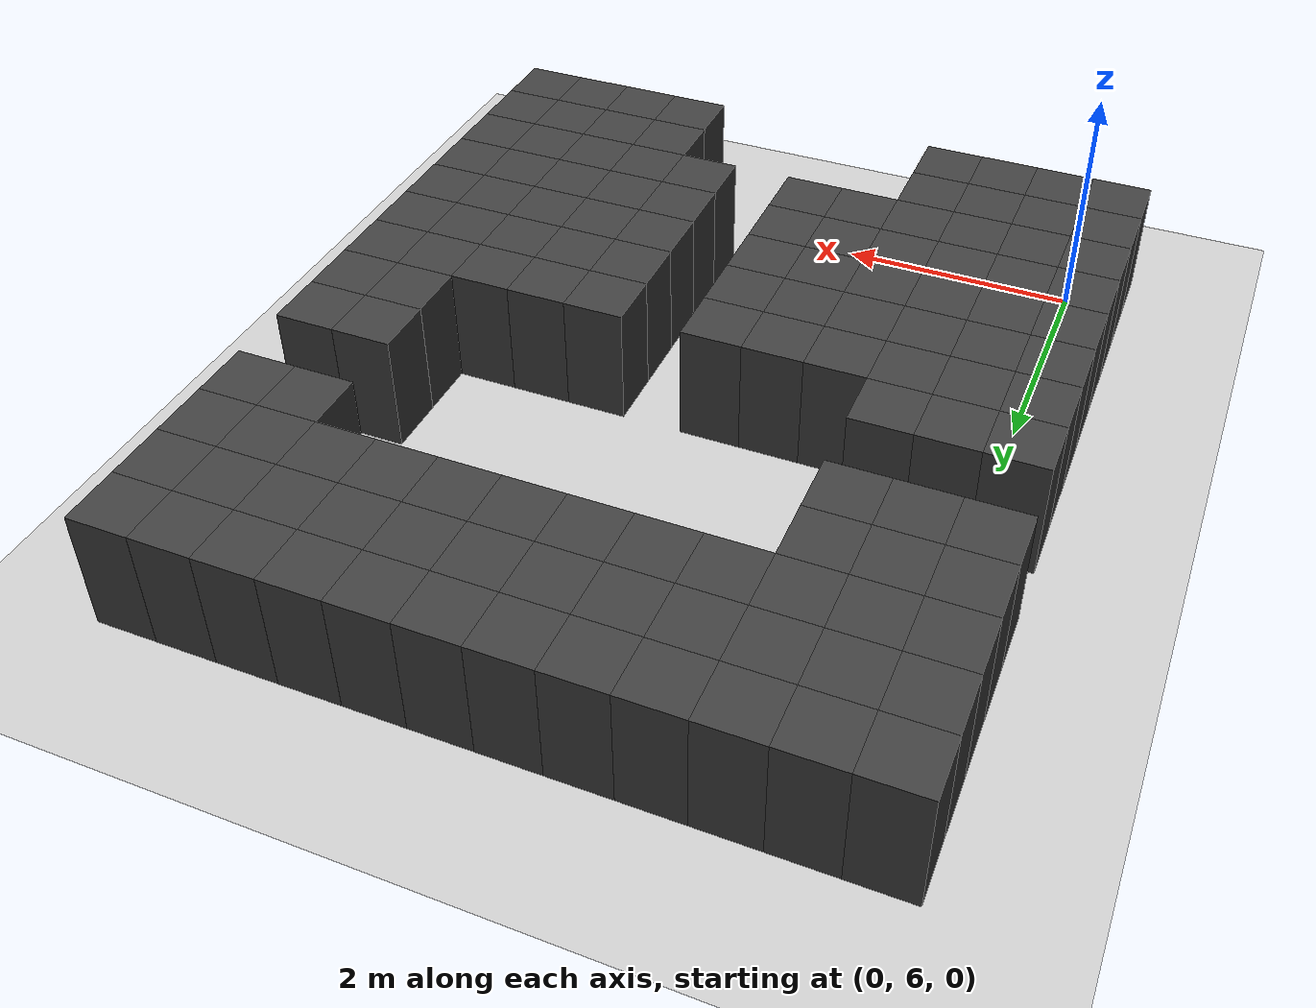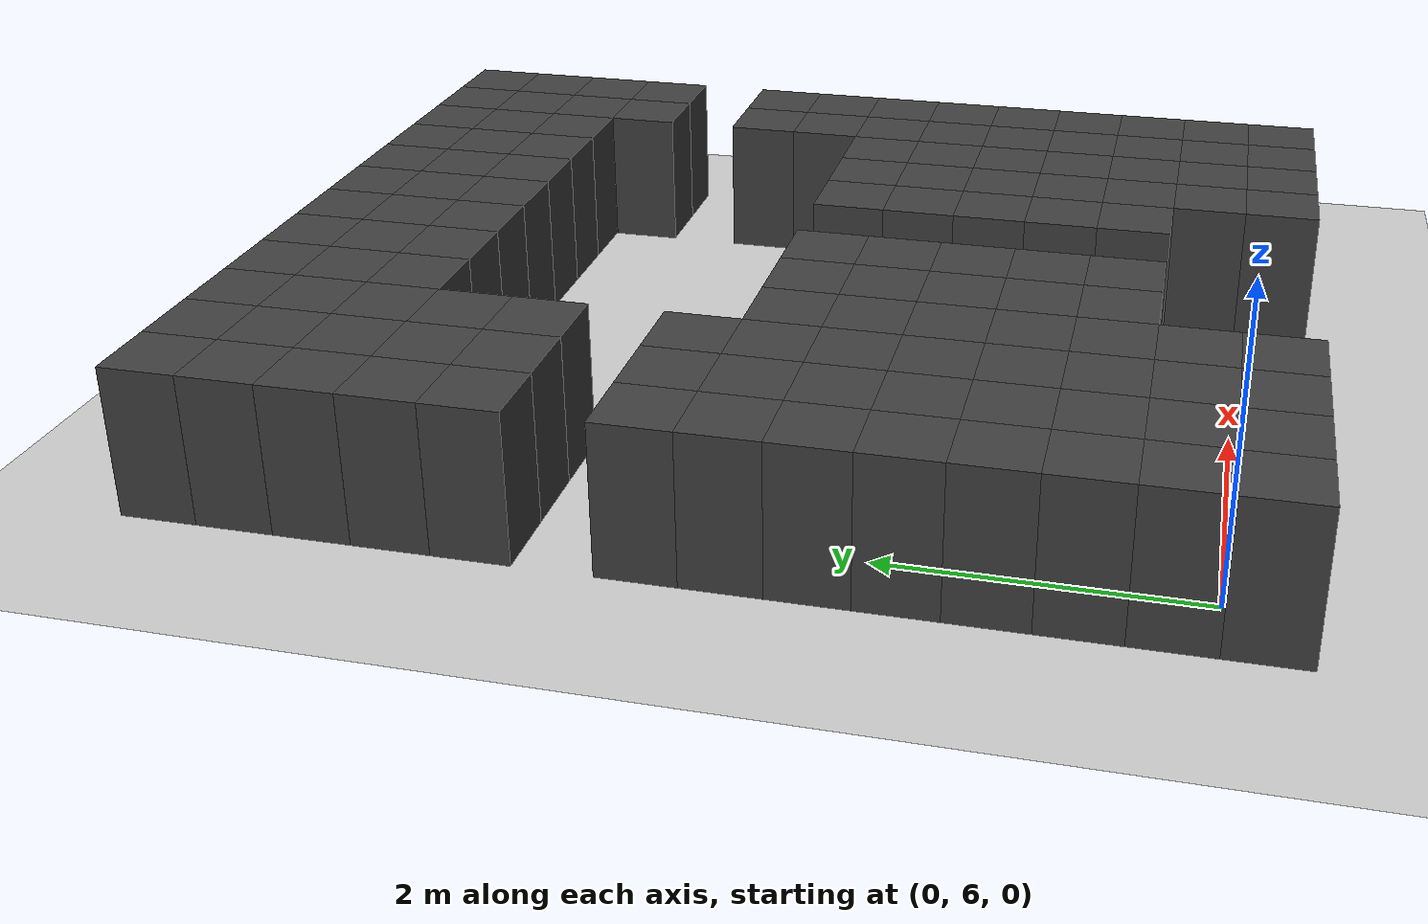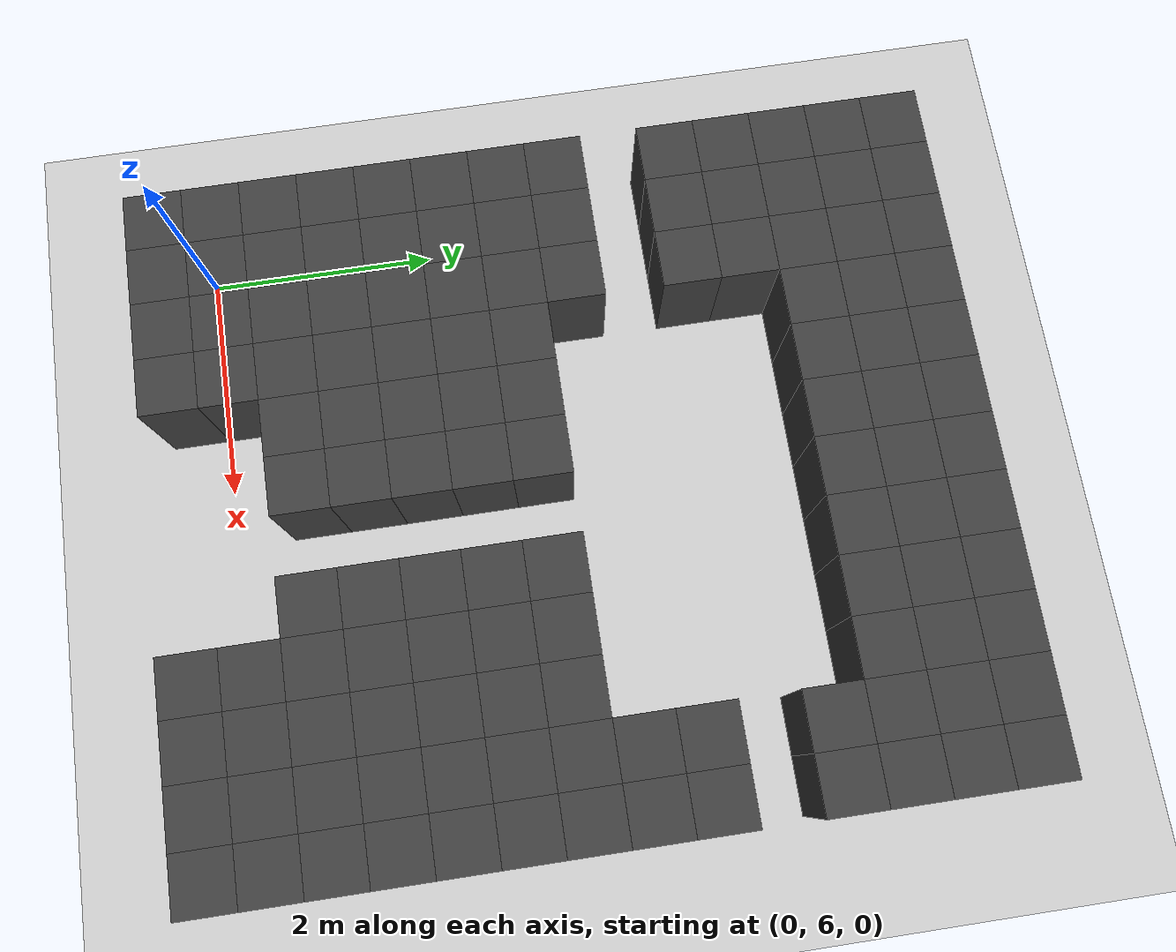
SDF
<sdf version="1.7">
 <world name="map_14706">
  <model name="ground_plane">
   <static>true</static>
   <link name="link">
    <collision name="collision">
     <geometry><plane><normal>0 0 1</normal><size>200 200</size></plane></geometry>
    </collision>
    <visual name="visual">
     <geometry><plane><normal>0 0 1</normal><size>200 200</size></plane></geometry>
     <material><ambient>0.8 0.8 0.8 1</ambient><diffuse>0.8 0.8 0.8 1</diffuse></material>
    </visual>
   </link>
  </model>
  <model name="maze_environment">
   <static>true</static>
   <link name="wall_24">
    <pose>-0.250 12.250 0.500 0 0 0</pose>
    <collision name="col"><geometry><box><size>0.5 0.5 1.0</size></box></geometry></collision>
    <visual name="vis">
     <geometry><box><size>0.5 0.5 1.0</size></box></geometry>
     <material><ambient>0.15 0.15 0.15 1</ambient><diffuse>0.25 0.25 0.25 1</diffuse></material>
    </visual>
   </link>
   <link name="wall_25">
    <pose>0.250 12.250 0.500 0 0 0</pose>
    <collision name="col"><geometry><box><size>0.5 0.5 1.0</size></box></geometry></collision>
    <visual name="vis">
     <geometry><box><size>0.5 0.5 1.0</size></box></geometry>
     <material><ambient>0.15 0.15 0.15 1</ambient><diffuse>0.25 0.25 0.25 1</diffuse></material>
    </visual>
   </link>
   <link name="wall_26">
    <pose>0.750 12.250 0.500 0 0 0</pose>
    <collision name="col"><geometry><box><size>0.5 0.5 1.0</size></box></geometry></collision>
    <visual name="vis">
     <geometry><box><size>0.5 0.5 1.0</size></box></geometry>
     <material><ambient>0.15 0.15 0.15 1</ambient><diffuse>0.25 0.25 0.25 1</diffuse></material>
    </visual>
   </link>
   <link name="wall_27">
    <pose>1.250 12.250 0.500 0 0 0</pose>
    <collision name="col"><geometry><box><size>0.5 0.5 1.0</size></box></geometry></collision>
    <visual name="vis">
     <geometry><box><size>0.5 0.5 1.0</size></box></geometry>
     <material><ambient>0.15 0.15 0.15 1</ambient><diffuse>0.25 0.25 0.25 1</diffuse></material>
    </visual>
   </link>
   <link name="wall_28">
    <pose>1.750 12.250 0.500 0 0 0</pose>
    <collision name="col"><geometry><box><size>0.5 0.5 1.0</size></box></geometry></collision>
    <visual name="vis">
     <geometry><box><size>0.5 0.5 1.0</size></box></geometry>
     <material><ambient>0.15 0.15 0.15 1</ambient><diffuse>0.25 0.25 0.25 1</diffuse></material>
    </visual>
   </link>
   <link name="wall_29">
    <pose>2.250 12.250 0.500 0 0 0</pose>
    <collision name="col"><geometry><box><size>0.5 0.5 1.0</size></box></geometry></collision>
    <visual name="vis">
     <geometry><box><size>0.5 0.5 1.0</size></box></geometry>
     <material><ambient>0.15 0.15 0.15 1</ambient><diffuse>0.25 0.25 0.25 1</diffuse></material>
    </visual>
   </link>
   <link name="wall_30">
    <pose>2.750 12.250 0.500 0 0 0</pose>
    <collision name="col"><geometry><box><size>0.5 0.5 1.0</size></box></geometry></collision>
    <visual name="vis">
     <geometry><box><size>0.5 0.5 1.0</size></box></geometry>
     <material><ambient>0.15 0.15 0.15 1</ambient><diffuse>0.25 0.25 0.25 1</diffuse></material>
    </visual>
   </link>
   <link name="wall_31">
    <pose>3.250 12.250 0.500 0 0 0</pose>
    <collision name="col"><geometry><box><size>0.5 0.5 1.0</size></box></geometry></collision>
    <visual name="vis">
     <geometry><box><size>0.5 0.5 1.0</size></box></geometry>
     <material><ambient>0.15 0.15 0.15 1</ambient><diffuse>0.25 0.25 0.25 1</diffuse></material>
    </visual>
   </link>
   <link name="wall_32">
    <pose>3.750 12.250 0.500 0 0 0</pose>
    <collision name="col"><geometry><box><size>0.5 0.5 1.0</size></box></geometry></collision>
    <visual name="vis">
     <geometry><box><size>0.5 0.5 1.0</size></box></geometry>
     <material><ambient>0.15 0.15 0.15 1</ambient><diffuse>0.25 0.25 0.25 1</diffuse></material>
    </visual>
   </link>
   <link name="wall_33">
    <pose>4.250 12.250 0.500 0 0 0</pose>
    <collision name="col"><geometry><box><size>0.5 0.5 1.0</size></box></geometry></collision>
    <visual name="vis">
     <geometry><box><size>0.5 0.5 1.0</size></box></geometry>
     <material><ambient>0.15 0.15 0.15 1</ambient><diffuse>0.25 0.25 0.25 1</diffuse></material>
    </visual>
   </link>
   <link name="wall_34">
    <pose>4.750 12.250 0.500 0 0 0</pose>
    <collision name="col"><geometry><box><size>0.5 0.5 1.0</size></box></geometry></collision>
    <visual name="vis">
     <geometry><box><size>0.5 0.5 1.0</size></box></geometry>
     <material><ambient>0.15 0.15 0.15 1</ambient><diffuse>0.25 0.25 0.25 1</diffuse></material>
    </visual>
   </link>
   <link name="wall_35">
    <pose>5.250 12.250 0.500 0 0 0</pose>
    <collision name="col"><geometry><box><size>0.5 0.5 1.0</size></box></geometry></collision>
    <visual name="vis">
     <geometry><box><size>0.5 0.5 1.0</size></box></geometry>
     <material><ambient>0.15 0.15 0.15 1</ambient><diffuse>0.25 0.25 0.25 1</diffuse></material>
    </visual>
   </link>
   <link name="wall_71">
    <pose>-0.250 11.750 0.500 0 0 0</pose>
    <collision name="col"><geometry><box><size>0.5 0.5 1.0</size></box></geometry></collision>
    <visual name="vis">
     <geometry><box><size>0.5 0.5 1.0</size></box></geometry>
     <material><ambient>0.15 0.15 0.15 1</ambient><diffuse>0.25 0.25 0.25 1</diffuse></material>
    </visual>
   </link>
   <link name="wall_72">
    <pose>0.250 11.750 0.500 0 0 0</pose>
    <collision name="col"><geometry><box><size>0.5 0.5 1.0</size></box></geometry></collision>
    <visual name="vis">
     <geometry><box><size>0.5 0.5 1.0</size></box></geometry>
     <material><ambient>0.15 0.15 0.15 1</ambient><diffuse>0.25 0.25 0.25 1</diffuse></material>
    </visual>
   </link>
   <link name="wall_73">
    <pose>0.750 11.750 0.500 0 0 0</pose>
    <collision name="col"><geometry><box><size>0.5 0.5 1.0</size></box></geometry></collision>
    <visual name="vis">
     <geometry><box><size>0.5 0.5 1.0</size></box></geometry>
     <material><ambient>0.15 0.15 0.15 1</ambient><diffuse>0.25 0.25 0.25 1</diffuse></material>
    </visual>
   </link>
   <link name="wall_74">
    <pose>1.250 11.750 0.500 0 0 0</pose>
    <collision name="col"><geometry><box><size>0.5 0.5 1.0</size></box></geometry></collision>
    <visual name="vis">
     <geometry><box><size>0.5 0.5 1.0</size></box></geometry>
     <material><ambient>0.15 0.15 0.15 1</ambient><diffuse>0.25 0.25 0.25 1</diffuse></material>
    </visual>
   </link>
   <link name="wall_75">
    <pose>1.750 11.750 0.500 0 0 0</pose>
    <collision name="col"><geometry><box><size>0.5 0.5 1.0</size></box></geometry></collision>
    <visual name="vis">
     <geometry><box><size>0.5 0.5 1.0</size></box></geometry>
     <material><ambient>0.15 0.15 0.15 1</ambient><diffuse>0.25 0.25 0.25 1</diffuse></material>
    </visual>
   </link>
   <link name="wall_76">
    <pose>2.250 11.750 0.500 0 0 0</pose>
    <collision name="col"><geometry><box><size>0.5 0.5 1.0</size></box></geometry></collision>
    <visual name="vis">
     <geometry><box><size>0.5 0.5 1.0</size></box></geometry>
     <material><ambient>0.15 0.15 0.15 1</ambient><diffuse>0.25 0.25 0.25 1</diffuse></material>
    </visual>
   </link>
   <link name="wall_77">
    <pose>2.750 11.750 0.500 0 0 0</pose>
    <collision name="col"><geometry><box><size>0.5 0.5 1.0</size></box></geometry></collision>
    <visual name="vis">
     <geometry><box><size>0.5 0.5 1.0</size></box></geometry>
     <material><ambient>0.15 0.15 0.15 1</ambient><diffuse>0.25 0.25 0.25 1</diffuse></material>
    </visual>
   </link>
   <link name="wall_78">
    <pose>3.250 11.750 0.500 0 0 0</pose>
    <collision name="col"><geometry><box><size>0.5 0.5 1.0</size></box></geometry></collision>
    <visual name="vis">
     <geometry><box><size>0.5 0.5 1.0</size></box></geometry>
     <material><ambient>0.15 0.15 0.15 1</ambient><diffuse>0.25 0.25 0.25 1</diffuse></material>
    </visual>
   </link>
   <link name="wall_79">
    <pose>3.750 11.750 0.500 0 0 0</pose>
    <collision name="col"><geometry><box><size>0.5 0.5 1.0</size></box></geometry></collision>
    <visual name="vis">
     <geometry><box><size>0.5 0.5 1.0</size></box></geometry>
     <material><ambient>0.15 0.15 0.15 1</ambient><diffuse>0.25 0.25 0.25 1</diffuse></material>
    </visual>
   </link>
   <link name="wall_80">
    <pose>4.250 11.750 0.500 0 0 0</pose>
    <collision name="col"><geometry><box><size>0.5 0.5 1.0</size></box></geometry></collision>
    <visual name="vis">
     <geometry><box><size>0.5 0.5 1.0</size></box></geometry>
     <material><ambient>0.15 0.15 0.15 1</ambient><diffuse>0.25 0.25 0.25 1</diffuse></material>
    </visual>
   </link>
   <link name="wall_81">
    <pose>4.750 11.750 0.500 0 0 0</pose>
    <collision name="col"><geometry><box><size>0.5 0.5 1.0</size></box></geometry></collision>
    <visual name="vis">
     <geometry><box><size>0.5 0.5 1.0</size></box></geometry>
     <material><ambient>0.15 0.15 0.15 1</ambient><diffuse>0.25 0.25 0.25 1</diffuse></material>
    </visual>
   </link>
   <link name="wall_82">
    <pose>5.250 11.750 0.500 0 0 0</pose>
    <collision name="col"><geometry><box><size>0.5 0.5 1.0</size></box></geometry></collision>
    <visual name="vis">
     <geometry><box><size>0.5 0.5 1.0</size></box></geometry>
     <material><ambient>0.15 0.15 0.15 1</ambient><diffuse>0.25 0.25 0.25 1</diffuse></material>
    </visual>
   </link>
   <link name="wall_110">
    <pose>-0.250 11.250 0.500 0 0 0</pose>
    <collision name="col"><geometry><box><size>0.5 0.5 1.0</size></box></geometry></collision>
    <visual name="vis">
     <geometry><box><size>0.5 0.5 1.0</size></box></geometry>
     <material><ambient>0.15 0.15 0.15 1</ambient><diffuse>0.25 0.25 0.25 1</diffuse></material>
    </visual>
   </link>
   <link name="wall_111">
    <pose>0.250 11.250 0.500 0 0 0</pose>
    <collision name="col"><geometry><box><size>0.5 0.5 1.0</size></box></geometry></collision>
    <visual name="vis">
     <geometry><box><size>0.5 0.5 1.0</size></box></geometry>
     <material><ambient>0.15 0.15 0.15 1</ambient><diffuse>0.25 0.25 0.25 1</diffuse></material>
    </visual>
   </link>
   <link name="wall_112">
    <pose>0.750 11.250 0.500 0 0 0</pose>
    <collision name="col"><geometry><box><size>0.5 0.5 1.0</size></box></geometry></collision>
    <visual name="vis">
     <geometry><box><size>0.5 0.5 1.0</size></box></geometry>
     <material><ambient>0.15 0.15 0.15 1</ambient><diffuse>0.25 0.25 0.25 1</diffuse></material>
    </visual>
   </link>
   <link name="wall_113">
    <pose>1.250 11.250 0.500 0 0 0</pose>
    <collision name="col"><geometry><box><size>0.5 0.5 1.0</size></box></geometry></collision>
    <visual name="vis">
     <geometry><box><size>0.5 0.5 1.0</size></box></geometry>
     <material><ambient>0.15 0.15 0.15 1</ambient><diffuse>0.25 0.25 0.25 1</diffuse></material>
    </visual>
   </link>
   <link name="wall_114">
    <pose>1.750 11.250 0.500 0 0 0</pose>
    <collision name="col"><geometry><box><size>0.5 0.5 1.0</size></box></geometry></collision>
    <visual name="vis">
     <geometry><box><size>0.5 0.5 1.0</size></box></geometry>
     <material><ambient>0.15 0.15 0.15 1</ambient><diffuse>0.25 0.25 0.25 1</diffuse></material>
    </visual>
   </link>
   <link name="wall_115">
    <pose>2.250 11.250 0.500 0 0 0</pose>
    <collision name="col"><geometry><box><size>0.5 0.5 1.0</size></box></geometry></collision>
    <visual name="vis">
     <geometry><box><size>0.5 0.5 1.0</size></box></geometry>
     <material><ambient>0.15 0.15 0.15 1</ambient><diffuse>0.25 0.25 0.25 1</diffuse></material>
    </visual>
   </link>
   <link name="wall_116">
    <pose>2.750 11.250 0.500 0 0 0</pose>
    <collision name="col"><geometry><box><size>0.5 0.5 1.0</size></box></geometry></collision>
    <visual name="vis">
     <geometry><box><size>0.5 0.5 1.0</size></box></geometry>
     <material><ambient>0.15 0.15 0.15 1</ambient><diffuse>0.25 0.25 0.25 1</diffuse></material>
    </visual>
   </link>
   <link name="wall_117">
    <pose>3.250 11.250 0.500 0 0 0</pose>
    <collision name="col"><geometry><box><size>0.5 0.5 1.0</size></box></geometry></collision>
    <visual name="vis">
     <geometry><box><size>0.5 0.5 1.0</size></box></geometry>
     <material><ambient>0.15 0.15 0.15 1</ambient><diffuse>0.25 0.25 0.25 1</diffuse></material>
    </visual>
   </link>
   <link name="wall_118">
    <pose>3.750 11.250 0.500 0 0 0</pose>
    <collision name="col"><geometry><box><size>0.5 0.5 1.0</size></box></geometry></collision>
    <visual name="vis">
     <geometry><box><size>0.5 0.5 1.0</size></box></geometry>
     <material><ambient>0.15 0.15 0.15 1</ambient><diffuse>0.25 0.25 0.25 1</diffuse></material>
    </visual>
   </link>
   <link name="wall_119">
    <pose>4.250 11.250 0.500 0 0 0</pose>
    <collision name="col"><geometry><box><size>0.5 0.5 1.0</size></box></geometry></collision>
    <visual name="vis">
     <geometry><box><size>0.5 0.5 1.0</size></box></geometry>
     <material><ambient>0.15 0.15 0.15 1</ambient><diffuse>0.25 0.25 0.25 1</diffuse></material>
    </visual>
   </link>
   <link name="wall_120">
    <pose>4.750 11.250 0.500 0 0 0</pose>
    <collision name="col"><geometry><box><size>0.5 0.5 1.0</size></box></geometry></collision>
    <visual name="vis">
     <geometry><box><size>0.5 0.5 1.0</size></box></geometry>
     <material><ambient>0.15 0.15 0.15 1</ambient><diffuse>0.25 0.25 0.25 1</diffuse></material>
    </visual>
   </link>
   <link name="wall_121">
    <pose>5.250 11.250 0.500 0 0 0</pose>
    <collision name="col"><geometry><box><size>0.5 0.5 1.0</size></box></geometry></collision>
    <visual name="vis">
     <geometry><box><size>0.5 0.5 1.0</size></box></geometry>
     <material><ambient>0.15 0.15 0.15 1</ambient><diffuse>0.25 0.25 0.25 1</diffuse></material>
    </visual>
   </link>
   <link name="wall_149">
    <pose>-0.250 10.750 0.500 0 0 0</pose>
    <collision name="col"><geometry><box><size>0.5 0.5 1.0</size></box></geometry></collision>
    <visual name="vis">
     <geometry><box><size>0.5 0.5 1.0</size></box></geometry>
     <material><ambient>0.15 0.15 0.15 1</ambient><diffuse>0.25 0.25 0.25 1</diffuse></material>
    </visual>
   </link>
   <link name="wall_150">
    <pose>0.250 10.750 0.500 0 0 0</pose>
    <collision name="col"><geometry><box><size>0.5 0.5 1.0</size></box></geometry></collision>
    <visual name="vis">
     <geometry><box><size>0.5 0.5 1.0</size></box></geometry>
     <material><ambient>0.15 0.15 0.15 1</ambient><diffuse>0.25 0.25 0.25 1</diffuse></material>
    </visual>
   </link>
   <link name="wall_151">
    <pose>0.750 10.750 0.500 0 0 0</pose>
    <collision name="col"><geometry><box><size>0.5 0.5 1.0</size></box></geometry></collision>
    <visual name="vis">
     <geometry><box><size>0.5 0.5 1.0</size></box></geometry>
     <material><ambient>0.15 0.15 0.15 1</ambient><diffuse>0.25 0.25 0.25 1</diffuse></material>
    </visual>
   </link>
   <link name="wall_152">
    <pose>4.750 10.750 0.500 0 0 0</pose>
    <collision name="col"><geometry><box><size>0.5 0.5 1.0</size></box></geometry></collision>
    <visual name="vis">
     <geometry><box><size>0.5 0.5 1.0</size></box></geometry>
     <material><ambient>0.15 0.15 0.15 1</ambient><diffuse>0.25 0.25 0.25 1</diffuse></material>
    </visual>
   </link>
   <link name="wall_153">
    <pose>5.250 10.750 0.500 0 0 0</pose>
    <collision name="col"><geometry><box><size>0.5 0.5 1.0</size></box></geometry></collision>
    <visual name="vis">
     <geometry><box><size>0.5 0.5 1.0</size></box></geometry>
     <material><ambient>0.15 0.15 0.15 1</ambient><diffuse>0.25 0.25 0.25 1</diffuse></material>
    </visual>
   </link>
   <link name="wall_180">
    <pose>-0.250 10.250 0.500 0 0 0</pose>
    <collision name="col"><geometry><box><size>0.5 0.5 1.0</size></box></geometry></collision>
    <visual name="vis">
     <geometry><box><size>0.5 0.5 1.0</size></box></geometry>
     <material><ambient>0.15 0.15 0.15 1</ambient><diffuse>0.25 0.25 0.25 1</diffuse></material>
    </visual>
   </link>
   <link name="wall_181">
    <pose>0.250 10.250 0.500 0 0 0</pose>
    <collision name="col"><geometry><box><size>0.5 0.5 1.0</size></box></geometry></collision>
    <visual name="vis">
     <geometry><box><size>0.5 0.5 1.0</size></box></geometry>
     <material><ambient>0.15 0.15 0.15 1</ambient><diffuse>0.25 0.25 0.25 1</diffuse></material>
    </visual>
   </link>
   <link name="wall_182">
    <pose>0.750 10.250 0.500 0 0 0</pose>
    <collision name="col"><geometry><box><size>0.5 0.5 1.0</size></box></geometry></collision>
    <visual name="vis">
     <geometry><box><size>0.5 0.5 1.0</size></box></geometry>
     <material><ambient>0.15 0.15 0.15 1</ambient><diffuse>0.25 0.25 0.25 1</diffuse></material>
    </visual>
   </link>
   <link name="wall_205">
    <pose>4.750 9.750 0.500 0 0 0</pose>
    <collision name="col"><geometry><box><size>0.5 0.5 1.0</size></box></geometry></collision>
    <visual name="vis">
     <geometry><box><size>0.5 0.5 1.0</size></box></geometry>
     <material><ambient>0.15 0.15 0.15 1</ambient><diffuse>0.25 0.25 0.25 1</diffuse></material>
    </visual>
   </link>
   <link name="wall_206">
    <pose>5.250 9.750 0.500 0 0 0</pose>
    <collision name="col"><geometry><box><size>0.5 0.5 1.0</size></box></geometry></collision>
    <visual name="vis">
     <geometry><box><size>0.5 0.5 1.0</size></box></geometry>
     <material><ambient>0.15 0.15 0.15 1</ambient><diffuse>0.25 0.25 0.25 1</diffuse></material>
    </visual>
   </link>
   <link name="wall_228">
    <pose>-0.250 9.250 0.500 0 0 0</pose>
    <collision name="col"><geometry><box><size>0.5 0.5 1.0</size></box></geometry></collision>
    <visual name="vis">
     <geometry><box><size>0.5 0.5 1.0</size></box></geometry>
     <material><ambient>0.15 0.15 0.15 1</ambient><diffuse>0.25 0.25 0.25 1</diffuse></material>
    </visual>
   </link>
   <link name="wall_229">
    <pose>0.250 9.250 0.500 0 0 0</pose>
    <collision name="col"><geometry><box><size>0.5 0.5 1.0</size></box></geometry></collision>
    <visual name="vis">
     <geometry><box><size>0.5 0.5 1.0</size></box></geometry>
     <material><ambient>0.15 0.15 0.15 1</ambient><diffuse>0.25 0.25 0.25 1</diffuse></material>
    </visual>
   </link>
   <link name="wall_230">
    <pose>0.750 9.250 0.500 0 0 0</pose>
    <collision name="col"><geometry><box><size>0.5 0.5 1.0</size></box></geometry></collision>
    <visual name="vis">
     <geometry><box><size>0.5 0.5 1.0</size></box></geometry>
     <material><ambient>0.15 0.15 0.15 1</ambient><diffuse>0.25 0.25 0.25 1</diffuse></material>
    </visual>
   </link>
   <link name="wall_231">
    <pose>4.750 9.250 0.500 0 0 0</pose>
    <collision name="col"><geometry><box><size>0.5 0.5 1.0</size></box></geometry></collision>
    <visual name="vis">
     <geometry><box><size>0.5 0.5 1.0</size></box></geometry>
     <material><ambient>0.15 0.15 0.15 1</ambient><diffuse>0.25 0.25 0.25 1</diffuse></material>
    </visual>
   </link>
   <link name="wall_232">
    <pose>5.250 9.250 0.500 0 0 0</pose>
    <collision name="col"><geometry><box><size>0.5 0.5 1.0</size></box></geometry></collision>
    <visual name="vis">
     <geometry><box><size>0.5 0.5 1.0</size></box></geometry>
     <material><ambient>0.15 0.15 0.15 1</ambient><diffuse>0.25 0.25 0.25 1</diffuse></material>
    </visual>
   </link>
   <link name="wall_250">
    <pose>-0.250 8.750 0.500 0 0 0</pose>
    <collision name="col"><geometry><box><size>0.5 0.5 1.0</size></box></geometry></collision>
    <visual name="vis">
     <geometry><box><size>0.5 0.5 1.0</size></box></geometry>
     <material><ambient>0.15 0.15 0.15 1</ambient><diffuse>0.25 0.25 0.25 1</diffuse></material>
    </visual>
   </link>
   <link name="wall_251">
    <pose>0.250 8.750 0.500 0 0 0</pose>
    <collision name="col"><geometry><box><size>0.5 0.5 1.0</size></box></geometry></collision>
    <visual name="vis">
     <geometry><box><size>0.5 0.5 1.0</size></box></geometry>
     <material><ambient>0.15 0.15 0.15 1</ambient><diffuse>0.25 0.25 0.25 1</diffuse></material>
    </visual>
   </link>
   <link name="wall_252">
    <pose>0.750 8.750 0.500 0 0 0</pose>
    <collision name="col"><geometry><box><size>0.5 0.5 1.0</size></box></geometry></collision>
    <visual name="vis">
     <geometry><box><size>0.5 0.5 1.0</size></box></geometry>
     <material><ambient>0.15 0.15 0.15 1</ambient><diffuse>0.25 0.25 0.25 1</diffuse></material>
    </visual>
   </link>
   <link name="wall_253">
    <pose>1.250 8.750 0.500 0 0 0</pose>
    <collision name="col"><geometry><box><size>0.5 0.5 1.0</size></box></geometry></collision>
    <visual name="vis">
     <geometry><box><size>0.5 0.5 1.0</size></box></geometry>
     <material><ambient>0.15 0.15 0.15 1</ambient><diffuse>0.25 0.25 0.25 1</diffuse></material>
    </visual>
   </link>
   <link name="wall_254">
    <pose>1.750 8.750 0.500 0 0 0</pose>
    <collision name="col"><geometry><box><size>0.5 0.5 1.0</size></box></geometry></collision>
    <visual name="vis">
     <geometry><box><size>0.5 0.5 1.0</size></box></geometry>
     <material><ambient>0.15 0.15 0.15 1</ambient><diffuse>0.25 0.25 0.25 1</diffuse></material>
    </visual>
   </link>
   <link name="wall_255">
    <pose>2.250 8.750 0.500 0 0 0</pose>
    <collision name="col"><geometry><box><size>0.5 0.5 1.0</size></box></geometry></collision>
    <visual name="vis">
     <geometry><box><size>0.5 0.5 1.0</size></box></geometry>
     <material><ambient>0.15 0.15 0.15 1</ambient><diffuse>0.25 0.25 0.25 1</diffuse></material>
    </visual>
   </link>
   <link name="wall_256">
    <pose>3.250 8.750 0.500 0 0 0</pose>
    <collision name="col"><geometry><box><size>0.5 0.5 1.0</size></box></geometry></collision>
    <visual name="vis">
     <geometry><box><size>0.5 0.5 1.0</size></box></geometry>
     <material><ambient>0.15 0.15 0.15 1</ambient><diffuse>0.25 0.25 0.25 1</diffuse></material>
    </visual>
   </link>
   <link name="wall_257">
    <pose>3.750 8.750 0.500 0 0 0</pose>
    <collision name="col"><geometry><box><size>0.5 0.5 1.0</size></box></geometry></collision>
    <visual name="vis">
     <geometry><box><size>0.5 0.5 1.0</size></box></geometry>
     <material><ambient>0.15 0.15 0.15 1</ambient><diffuse>0.25 0.25 0.25 1</diffuse></material>
    </visual>
   </link>
   <link name="wall_258">
    <pose>4.250 8.750 0.500 0 0 0</pose>
    <collision name="col"><geometry><box><size>0.5 0.5 1.0</size></box></geometry></collision>
    <visual name="vis">
     <geometry><box><size>0.5 0.5 1.0</size></box></geometry>
     <material><ambient>0.15 0.15 0.15 1</ambient><diffuse>0.25 0.25 0.25 1</diffuse></material>
    </visual>
   </link>
   <link name="wall_259">
    <pose>4.750 8.750 0.500 0 0 0</pose>
    <collision name="col"><geometry><box><size>0.5 0.5 1.0</size></box></geometry></collision>
    <visual name="vis">
     <geometry><box><size>0.5 0.5 1.0</size></box></geometry>
     <material><ambient>0.15 0.15 0.15 1</ambient><diffuse>0.25 0.25 0.25 1</diffuse></material>
    </visual>
   </link>
   <link name="wall_260">
    <pose>5.250 8.750 0.500 0 0 0</pose>
    <collision name="col"><geometry><box><size>0.5 0.5 1.0</size></box></geometry></collision>
    <visual name="vis">
     <geometry><box><size>0.5 0.5 1.0</size></box></geometry>
     <material><ambient>0.15 0.15 0.15 1</ambient><diffuse>0.25 0.25 0.25 1</diffuse></material>
    </visual>
   </link>
   <link name="wall_277">
    <pose>-0.250 8.250 0.500 0 0 0</pose>
    <collision name="col"><geometry><box><size>0.5 0.5 1.0</size></box></geometry></collision>
    <visual name="vis">
     <geometry><box><size>0.5 0.5 1.0</size></box></geometry>
     <material><ambient>0.15 0.15 0.15 1</ambient><diffuse>0.25 0.25 0.25 1</diffuse></material>
    </visual>
   </link>
   <link name="wall_278">
    <pose>0.250 8.250 0.500 0 0 0</pose>
    <collision name="col"><geometry><box><size>0.5 0.5 1.0</size></box></geometry></collision>
    <visual name="vis">
     <geometry><box><size>0.5 0.5 1.0</size></box></geometry>
     <material><ambient>0.15 0.15 0.15 1</ambient><diffuse>0.25 0.25 0.25 1</diffuse></material>
    </visual>
   </link>
   <link name="wall_279">
    <pose>0.750 8.250 0.500 0 0 0</pose>
    <collision name="col"><geometry><box><size>0.5 0.5 1.0</size></box></geometry></collision>
    <visual name="vis">
     <geometry><box><size>0.5 0.5 1.0</size></box></geometry>
     <material><ambient>0.15 0.15 0.15 1</ambient><diffuse>0.25 0.25 0.25 1</diffuse></material>
    </visual>
   </link>
   <link name="wall_280">
    <pose>1.250 8.250 0.500 0 0 0</pose>
    <collision name="col"><geometry><box><size>0.5 0.5 1.0</size></box></geometry></collision>
    <visual name="vis">
     <geometry><box><size>0.5 0.5 1.0</size></box></geometry>
     <material><ambient>0.15 0.15 0.15 1</ambient><diffuse>0.25 0.25 0.25 1</diffuse></material>
    </visual>
   </link>
   <link name="wall_281">
    <pose>1.750 8.250 0.500 0 0 0</pose>
    <collision name="col"><geometry><box><size>0.5 0.5 1.0</size></box></geometry></collision>
    <visual name="vis">
     <geometry><box><size>0.5 0.5 1.0</size></box></geometry>
     <material><ambient>0.15 0.15 0.15 1</ambient><diffuse>0.25 0.25 0.25 1</diffuse></material>
    </visual>
   </link>
   <link name="wall_282">
    <pose>2.250 8.250 0.500 0 0 0</pose>
    <collision name="col"><geometry><box><size>0.5 0.5 1.0</size></box></geometry></collision>
    <visual name="vis">
     <geometry><box><size>0.5 0.5 1.0</size></box></geometry>
     <material><ambient>0.15 0.15 0.15 1</ambient><diffuse>0.25 0.25 0.25 1</diffuse></material>
    </visual>
   </link>
   <link name="wall_283">
    <pose>3.250 8.250 0.500 0 0 0</pose>
    <collision name="col"><geometry><box><size>0.5 0.5 1.0</size></box></geometry></collision>
    <visual name="vis">
     <geometry><box><size>0.5 0.5 1.0</size></box></geometry>
     <material><ambient>0.15 0.15 0.15 1</ambient><diffuse>0.25 0.25 0.25 1</diffuse></material>
    </visual>
   </link>
   <link name="wall_284">
    <pose>3.750 8.250 0.500 0 0 0</pose>
    <collision name="col"><geometry><box><size>0.5 0.5 1.0</size></box></geometry></collision>
    <visual name="vis">
     <geometry><box><size>0.5 0.5 1.0</size></box></geometry>
     <material><ambient>0.15 0.15 0.15 1</ambient><diffuse>0.25 0.25 0.25 1</diffuse></material>
    </visual>
   </link>
   <link name="wall_285">
    <pose>4.250 8.250 0.500 0 0 0</pose>
    <collision name="col"><geometry><box><size>0.5 0.5 1.0</size></box></geometry></collision>
    <visual name="vis">
     <geometry><box><size>0.5 0.5 1.0</size></box></geometry>
     <material><ambient>0.15 0.15 0.15 1</ambient><diffuse>0.25 0.25 0.25 1</diffuse></material>
    </visual>
   </link>
   <link name="wall_286">
    <pose>4.750 8.250 0.500 0 0 0</pose>
    <collision name="col"><geometry><box><size>0.5 0.5 1.0</size></box></geometry></collision>
    <visual name="vis">
     <geometry><box><size>0.5 0.5 1.0</size></box></geometry>
     <material><ambient>0.15 0.15 0.15 1</ambient><diffuse>0.25 0.25 0.25 1</diffuse></material>
    </visual>
   </link>
   <link name="wall_287">
    <pose>5.250 8.250 0.500 0 0 0</pose>
    <collision name="col"><geometry><box><size>0.5 0.5 1.0</size></box></geometry></collision>
    <visual name="vis">
     <geometry><box><size>0.5 0.5 1.0</size></box></geometry>
     <material><ambient>0.15 0.15 0.15 1</ambient><diffuse>0.25 0.25 0.25 1</diffuse></material>
    </visual>
   </link>
   <link name="wall_301">
    <pose>-0.250 7.750 0.500 0 0 0</pose>
    <collision name="col"><geometry><box><size>0.5 0.5 1.0</size></box></geometry></collision>
    <visual name="vis">
     <geometry><box><size>0.5 0.5 1.0</size></box></geometry>
     <material><ambient>0.15 0.15 0.15 1</ambient><diffuse>0.25 0.25 0.25 1</diffuse></material>
    </visual>
   </link>
   <link name="wall_302">
    <pose>0.250 7.750 0.500 0 0 0</pose>
    <collision name="col"><geometry><box><size>0.5 0.5 1.0</size></box></geometry></collision>
    <visual name="vis">
     <geometry><box><size>0.5 0.5 1.0</size></box></geometry>
     <material><ambient>0.15 0.15 0.15 1</ambient><diffuse>0.25 0.25 0.25 1</diffuse></material>
    </visual>
   </link>
   <link name="wall_303">
    <pose>0.750 7.750 0.500 0 0 0</pose>
    <collision name="col"><geometry><box><size>0.5 0.5 1.0</size></box></geometry></collision>
    <visual name="vis">
     <geometry><box><size>0.5 0.5 1.0</size></box></geometry>
     <material><ambient>0.15 0.15 0.15 1</ambient><diffuse>0.25 0.25 0.25 1</diffuse></material>
    </visual>
   </link>
   <link name="wall_304">
    <pose>1.250 7.750 0.500 0 0 0</pose>
    <collision name="col"><geometry><box><size>0.5 0.5 1.0</size></box></geometry></collision>
    <visual name="vis">
     <geometry><box><size>0.5 0.5 1.0</size></box></geometry>
     <material><ambient>0.15 0.15 0.15 1</ambient><diffuse>0.25 0.25 0.25 1</diffuse></material>
    </visual>
   </link>
   <link name="wall_305">
    <pose>1.750 7.750 0.500 0 0 0</pose>
    <collision name="col"><geometry><box><size>0.5 0.5 1.0</size></box></geometry></collision>
    <visual name="vis">
     <geometry><box><size>0.5 0.5 1.0</size></box></geometry>
     <material><ambient>0.15 0.15 0.15 1</ambient><diffuse>0.25 0.25 0.25 1</diffuse></material>
    </visual>
   </link>
   <link name="wall_306">
    <pose>2.250 7.750 0.500 0 0 0</pose>
    <collision name="col"><geometry><box><size>0.5 0.5 1.0</size></box></geometry></collision>
    <visual name="vis">
     <geometry><box><size>0.5 0.5 1.0</size></box></geometry>
     <material><ambient>0.15 0.15 0.15 1</ambient><diffuse>0.25 0.25 0.25 1</diffuse></material>
    </visual>
   </link>
   <link name="wall_307">
    <pose>3.250 7.750 0.500 0 0 0</pose>
    <collision name="col"><geometry><box><size>0.5 0.5 1.0</size></box></geometry></collision>
    <visual name="vis">
     <geometry><box><size>0.5 0.5 1.0</size></box></geometry>
     <material><ambient>0.15 0.15 0.15 1</ambient><diffuse>0.25 0.25 0.25 1</diffuse></material>
    </visual>
   </link>
   <link name="wall_308">
    <pose>3.750 7.750 0.500 0 0 0</pose>
    <collision name="col"><geometry><box><size>0.5 0.5 1.0</size></box></geometry></collision>
    <visual name="vis">
     <geometry><box><size>0.5 0.5 1.0</size></box></geometry>
     <material><ambient>0.15 0.15 0.15 1</ambient><diffuse>0.25 0.25 0.25 1</diffuse></material>
    </visual>
   </link>
   <link name="wall_309">
    <pose>4.250 7.750 0.500 0 0 0</pose>
    <collision name="col"><geometry><box><size>0.5 0.5 1.0</size></box></geometry></collision>
    <visual name="vis">
     <geometry><box><size>0.5 0.5 1.0</size></box></geometry>
     <material><ambient>0.15 0.15 0.15 1</ambient><diffuse>0.25 0.25 0.25 1</diffuse></material>
    </visual>
   </link>
   <link name="wall_310">
    <pose>4.750 7.750 0.500 0 0 0</pose>
    <collision name="col"><geometry><box><size>0.5 0.5 1.0</size></box></geometry></collision>
    <visual name="vis">
     <geometry><box><size>0.5 0.5 1.0</size></box></geometry>
     <material><ambient>0.15 0.15 0.15 1</ambient><diffuse>0.25 0.25 0.25 1</diffuse></material>
    </visual>
   </link>
   <link name="wall_311">
    <pose>5.250 7.750 0.500 0 0 0</pose>
    <collision name="col"><geometry><box><size>0.5 0.5 1.0</size></box></geometry></collision>
    <visual name="vis">
     <geometry><box><size>0.5 0.5 1.0</size></box></geometry>
     <material><ambient>0.15 0.15 0.15 1</ambient><diffuse>0.25 0.25 0.25 1</diffuse></material>
    </visual>
   </link>
   <link name="wall_325">
    <pose>-0.250 7.250 0.500 0 0 0</pose>
    <collision name="col"><geometry><box><size>0.5 0.5 1.0</size></box></geometry></collision>
    <visual name="vis">
     <geometry><box><size>0.5 0.5 1.0</size></box></geometry>
     <material><ambient>0.15 0.15 0.15 1</ambient><diffuse>0.25 0.25 0.25 1</diffuse></material>
    </visual>
   </link>
   <link name="wall_326">
    <pose>0.250 7.250 0.500 0 0 0</pose>
    <collision name="col"><geometry><box><size>0.5 0.5 1.0</size></box></geometry></collision>
    <visual name="vis">
     <geometry><box><size>0.5 0.5 1.0</size></box></geometry>
     <material><ambient>0.15 0.15 0.15 1</ambient><diffuse>0.25 0.25 0.25 1</diffuse></material>
    </visual>
   </link>
   <link name="wall_327">
    <pose>0.750 7.250 0.500 0 0 0</pose>
    <collision name="col"><geometry><box><size>0.5 0.5 1.0</size></box></geometry></collision>
    <visual name="vis">
     <geometry><box><size>0.5 0.5 1.0</size></box></geometry>
     <material><ambient>0.15 0.15 0.15 1</ambient><diffuse>0.25 0.25 0.25 1</diffuse></material>
    </visual>
   </link>
   <link name="wall_328">
    <pose>1.250 7.250 0.500 0 0 0</pose>
    <collision name="col"><geometry><box><size>0.5 0.5 1.0</size></box></geometry></collision>
    <visual name="vis">
     <geometry><box><size>0.5 0.5 1.0</size></box></geometry>
     <material><ambient>0.15 0.15 0.15 1</ambient><diffuse>0.25 0.25 0.25 1</diffuse></material>
    </visual>
   </link>
   <link name="wall_329">
    <pose>1.750 7.250 0.500 0 0 0</pose>
    <collision name="col"><geometry><box><size>0.5 0.5 1.0</size></box></geometry></collision>
    <visual name="vis">
     <geometry><box><size>0.5 0.5 1.0</size></box></geometry>
     <material><ambient>0.15 0.15 0.15 1</ambient><diffuse>0.25 0.25 0.25 1</diffuse></material>
    </visual>
   </link>
   <link name="wall_330">
    <pose>2.250 7.250 0.500 0 0 0</pose>
    <collision name="col"><geometry><box><size>0.5 0.5 1.0</size></box></geometry></collision>
    <visual name="vis">
     <geometry><box><size>0.5 0.5 1.0</size></box></geometry>
     <material><ambient>0.15 0.15 0.15 1</ambient><diffuse>0.25 0.25 0.25 1</diffuse></material>
    </visual>
   </link>
   <link name="wall_331">
    <pose>3.250 7.250 0.500 0 0 0</pose>
    <collision name="col"><geometry><box><size>0.5 0.5 1.0</size></box></geometry></collision>
    <visual name="vis">
     <geometry><box><size>0.5 0.5 1.0</size></box></geometry>
     <material><ambient>0.15 0.15 0.15 1</ambient><diffuse>0.25 0.25 0.25 1</diffuse></material>
    </visual>
   </link>
   <link name="wall_332">
    <pose>3.750 7.250 0.500 0 0 0</pose>
    <collision name="col"><geometry><box><size>0.5 0.5 1.0</size></box></geometry></collision>
    <visual name="vis">
     <geometry><box><size>0.5 0.5 1.0</size></box></geometry>
     <material><ambient>0.15 0.15 0.15 1</ambient><diffuse>0.25 0.25 0.25 1</diffuse></material>
    </visual>
   </link>
   <link name="wall_333">
    <pose>4.250 7.250 0.500 0 0 0</pose>
    <collision name="col"><geometry><box><size>0.5 0.5 1.0</size></box></geometry></collision>
    <visual name="vis">
     <geometry><box><size>0.5 0.5 1.0</size></box></geometry>
     <material><ambient>0.15 0.15 0.15 1</ambient><diffuse>0.25 0.25 0.25 1</diffuse></material>
    </visual>
   </link>
   <link name="wall_334">
    <pose>4.750 7.250 0.500 0 0 0</pose>
    <collision name="col"><geometry><box><size>0.5 0.5 1.0</size></box></geometry></collision>
    <visual name="vis">
     <geometry><box><size>0.5 0.5 1.0</size></box></geometry>
     <material><ambient>0.15 0.15 0.15 1</ambient><diffuse>0.25 0.25 0.25 1</diffuse></material>
    </visual>
   </link>
   <link name="wall_335">
    <pose>5.250 7.250 0.500 0 0 0</pose>
    <collision name="col"><geometry><box><size>0.5 0.5 1.0</size></box></geometry></collision>
    <visual name="vis">
     <geometry><box><size>0.5 0.5 1.0</size></box></geometry>
     <material><ambient>0.15 0.15 0.15 1</ambient><diffuse>0.25 0.25 0.25 1</diffuse></material>
    </visual>
   </link>
   <link name="wall_348">
    <pose>-0.250 6.750 0.500 0 0 0</pose>
    <collision name="col"><geometry><box><size>0.5 0.5 1.0</size></box></geometry></collision>
    <visual name="vis">
     <geometry><box><size>0.5 0.5 1.0</size></box></geometry>
     <material><ambient>0.15 0.15 0.15 1</ambient><diffuse>0.25 0.25 0.25 1</diffuse></material>
    </visual>
   </link>
   <link name="wall_349">
    <pose>0.250 6.750 0.500 0 0 0</pose>
    <collision name="col"><geometry><box><size>0.5 0.5 1.0</size></box></geometry></collision>
    <visual name="vis">
     <geometry><box><size>0.5 0.5 1.0</size></box></geometry>
     <material><ambient>0.15 0.15 0.15 1</ambient><diffuse>0.25 0.25 0.25 1</diffuse></material>
    </visual>
   </link>
   <link name="wall_350">
    <pose>0.750 6.750 0.500 0 0 0</pose>
    <collision name="col"><geometry><box><size>0.5 0.5 1.0</size></box></geometry></collision>
    <visual name="vis">
     <geometry><box><size>0.5 0.5 1.0</size></box></geometry>
     <material><ambient>0.15 0.15 0.15 1</ambient><diffuse>0.25 0.25 0.25 1</diffuse></material>
    </visual>
   </link>
   <link name="wall_351">
    <pose>1.250 6.750 0.500 0 0 0</pose>
    <collision name="col"><geometry><box><size>0.5 0.5 1.0</size></box></geometry></collision>
    <visual name="vis">
     <geometry><box><size>0.5 0.5 1.0</size></box></geometry>
     <material><ambient>0.15 0.15 0.15 1</ambient><diffuse>0.25 0.25 0.25 1</diffuse></material>
    </visual>
   </link>
   <link name="wall_352">
    <pose>1.750 6.750 0.500 0 0 0</pose>
    <collision name="col"><geometry><box><size>0.5 0.5 1.0</size></box></geometry></collision>
    <visual name="vis">
     <geometry><box><size>0.5 0.5 1.0</size></box></geometry>
     <material><ambient>0.15 0.15 0.15 1</ambient><diffuse>0.25 0.25 0.25 1</diffuse></material>
    </visual>
   </link>
   <link name="wall_353">
    <pose>2.250 6.750 0.500 0 0 0</pose>
    <collision name="col"><geometry><box><size>0.5 0.5 1.0</size></box></geometry></collision>
    <visual name="vis">
     <geometry><box><size>0.5 0.5 1.0</size></box></geometry>
     <material><ambient>0.15 0.15 0.15 1</ambient><diffuse>0.25 0.25 0.25 1</diffuse></material>
    </visual>
   </link>
   <link name="wall_354">
    <pose>3.250 6.750 0.500 0 0 0</pose>
    <collision name="col"><geometry><box><size>0.5 0.5 1.0</size></box></geometry></collision>
    <visual name="vis">
     <geometry><box><size>0.5 0.5 1.0</size></box></geometry>
     <material><ambient>0.15 0.15 0.15 1</ambient><diffuse>0.25 0.25 0.25 1</diffuse></material>
    </visual>
   </link>
   <link name="wall_355">
    <pose>3.750 6.750 0.500 0 0 0</pose>
    <collision name="col"><geometry><box><size>0.5 0.5 1.0</size></box></geometry></collision>
    <visual name="vis">
     <geometry><box><size>0.5 0.5 1.0</size></box></geometry>
     <material><ambient>0.15 0.15 0.15 1</ambient><diffuse>0.25 0.25 0.25 1</diffuse></material>
    </visual>
   </link>
   <link name="wall_356">
    <pose>4.250 6.750 0.500 0 0 0</pose>
    <collision name="col"><geometry><box><size>0.5 0.5 1.0</size></box></geometry></collision>
    <visual name="vis">
     <geometry><box><size>0.5 0.5 1.0</size></box></geometry>
     <material><ambient>0.15 0.15 0.15 1</ambient><diffuse>0.25 0.25 0.25 1</diffuse></material>
    </visual>
   </link>
   <link name="wall_357">
    <pose>4.750 6.750 0.500 0 0 0</pose>
    <collision name="col"><geometry><box><size>0.5 0.5 1.0</size></box></geometry></collision>
    <visual name="vis">
     <geometry><box><size>0.5 0.5 1.0</size></box></geometry>
     <material><ambient>0.15 0.15 0.15 1</ambient><diffuse>0.25 0.25 0.25 1</diffuse></material>
    </visual>
   </link>
   <link name="wall_358">
    <pose>5.250 6.750 0.500 0 0 0</pose>
    <collision name="col"><geometry><box><size>0.5 0.5 1.0</size></box></geometry></collision>
    <visual name="vis">
     <geometry><box><size>0.5 0.5 1.0</size></box></geometry>
     <material><ambient>0.15 0.15 0.15 1</ambient><diffuse>0.25 0.25 0.25 1</diffuse></material>
    </visual>
   </link>
   <link name="wall_377">
    <pose>-0.250 6.250 0.500 0 0 0</pose>
    <collision name="col"><geometry><box><size>0.5 0.5 1.0</size></box></geometry></collision>
    <visual name="vis">
     <geometry><box><size>0.5 0.5 1.0</size></box></geometry>
     <material><ambient>0.15 0.15 0.15 1</ambient><diffuse>0.25 0.25 0.25 1</diffuse></material>
    </visual>
   </link>
   <link name="wall_378">
    <pose>0.250 6.250 0.500 0 0 0</pose>
    <collision name="col"><geometry><box><size>0.5 0.5 1.0</size></box></geometry></collision>
    <visual name="vis">
     <geometry><box><size>0.5 0.5 1.0</size></box></geometry>
     <material><ambient>0.15 0.15 0.15 1</ambient><diffuse>0.25 0.25 0.25 1</diffuse></material>
    </visual>
   </link>
   <link name="wall_379">
    <pose>0.750 6.250 0.500 0 0 0</pose>
    <collision name="col"><geometry><box><size>0.5 0.5 1.0</size></box></geometry></collision>
    <visual name="vis">
     <geometry><box><size>0.5 0.5 1.0</size></box></geometry>
     <material><ambient>0.15 0.15 0.15 1</ambient><diffuse>0.25 0.25 0.25 1</diffuse></material>
    </visual>
   </link>
   <link name="wall_380">
    <pose>1.250 6.250 0.500 0 0 0</pose>
    <collision name="col"><geometry><box><size>0.5 0.5 1.0</size></box></geometry></collision>
    <visual name="vis">
     <geometry><box><size>0.5 0.5 1.0</size></box></geometry>
     <material><ambient>0.15 0.15 0.15 1</ambient><diffuse>0.25 0.25 0.25 1</diffuse></material>
    </visual>
   </link>
   <link name="wall_381">
    <pose>3.750 6.250 0.500 0 0 0</pose>
    <collision name="col"><geometry><box><size>0.5 0.5 1.0</size></box></geometry></collision>
    <visual name="vis">
     <geometry><box><size>0.5 0.5 1.0</size></box></geometry>
     <material><ambient>0.15 0.15 0.15 1</ambient><diffuse>0.25 0.25 0.25 1</diffuse></material>
    </visual>
   </link>
   <link name="wall_382">
    <pose>4.250 6.250 0.500 0 0 0</pose>
    <collision name="col"><geometry><box><size>0.5 0.5 1.0</size></box></geometry></collision>
    <visual name="vis">
     <geometry><box><size>0.5 0.5 1.0</size></box></geometry>
     <material><ambient>0.15 0.15 0.15 1</ambient><diffuse>0.25 0.25 0.25 1</diffuse></material>
    </visual>
   </link>
   <link name="wall_383">
    <pose>4.750 6.250 0.500 0 0 0</pose>
    <collision name="col"><geometry><box><size>0.5 0.5 1.0</size></box></geometry></collision>
    <visual name="vis">
     <geometry><box><size>0.5 0.5 1.0</size></box></geometry>
     <material><ambient>0.15 0.15 0.15 1</ambient><diffuse>0.25 0.25 0.25 1</diffuse></material>
    </visual>
   </link>
   <link name="wall_384">
    <pose>5.250 6.250 0.500 0 0 0</pose>
    <collision name="col"><geometry><box><size>0.5 0.5 1.0</size></box></geometry></collision>
    <visual name="vis">
     <geometry><box><size>0.5 0.5 1.0</size></box></geometry>
     <material><ambient>0.15 0.15 0.15 1</ambient><diffuse>0.25 0.25 0.25 1</diffuse></material>
    </visual>
   </link>
   <link name="wall_407">
    <pose>-0.250 5.750 0.500 0 0 0</pose>
    <collision name="col"><geometry><box><size>0.5 0.5 1.0</size></box></geometry></collision>
    <visual name="vis">
     <geometry><box><size>0.5 0.5 1.0</size></box></geometry>
     <material><ambient>0.15 0.15 0.15 1</ambient><diffuse>0.25 0.25 0.25 1</diffuse></material>
    </visual>
   </link>
   <link name="wall_408">
    <pose>0.250 5.750 0.500 0 0 0</pose>
    <collision name="col"><geometry><box><size>0.5 0.5 1.0</size></box></geometry></collision>
    <visual name="vis">
     <geometry><box><size>0.5 0.5 1.0</size></box></geometry>
     <material><ambient>0.15 0.15 0.15 1</ambient><diffuse>0.25 0.25 0.25 1</diffuse></material>
    </visual>
   </link>
   <link name="wall_409">
    <pose>0.750 5.750 0.500 0 0 0</pose>
    <collision name="col"><geometry><box><size>0.5 0.5 1.0</size></box></geometry></collision>
    <visual name="vis">
     <geometry><box><size>0.5 0.5 1.0</size></box></geometry>
     <material><ambient>0.15 0.15 0.15 1</ambient><diffuse>0.25 0.25 0.25 1</diffuse></material>
    </visual>
   </link>
   <link name="wall_410">
    <pose>1.250 5.750 0.500 0 0 0</pose>
    <collision name="col"><geometry><box><size>0.5 0.5 1.0</size></box></geometry></collision>
    <visual name="vis">
     <geometry><box><size>0.5 0.5 1.0</size></box></geometry>
     <material><ambient>0.15 0.15 0.15 1</ambient><diffuse>0.25 0.25 0.25 1</diffuse></material>
    </visual>
   </link>
   <link name="wall_411">
    <pose>3.750 5.750 0.500 0 0 0</pose>
    <collision name="col"><geometry><box><size>0.5 0.5 1.0</size></box></geometry></collision>
    <visual name="vis">
     <geometry><box><size>0.5 0.5 1.0</size></box></geometry>
     <material><ambient>0.15 0.15 0.15 1</ambient><diffuse>0.25 0.25 0.25 1</diffuse></material>
    </visual>
   </link>
   <link name="wall_412">
    <pose>4.250 5.750 0.500 0 0 0</pose>
    <collision name="col"><geometry><box><size>0.5 0.5 1.0</size></box></geometry></collision>
    <visual name="vis">
     <geometry><box><size>0.5 0.5 1.0</size></box></geometry>
     <material><ambient>0.15 0.15 0.15 1</ambient><diffuse>0.25 0.25 0.25 1</diffuse></material>
    </visual>
   </link>
   <link name="wall_413">
    <pose>4.750 5.750 0.500 0 0 0</pose>
    <collision name="col"><geometry><box><size>0.5 0.5 1.0</size></box></geometry></collision>
    <visual name="vis">
     <geometry><box><size>0.5 0.5 1.0</size></box></geometry>
     <material><ambient>0.15 0.15 0.15 1</ambient><diffuse>0.25 0.25 0.25 1</diffuse></material>
    </visual>
   </link>
   <link name="wall_414">
    <pose>5.250 5.750 0.500 0 0 0</pose>
    <collision name="col"><geometry><box><size>0.5 0.5 1.0</size></box></geometry></collision>
    <visual name="vis">
     <geometry><box><size>0.5 0.5 1.0</size></box></geometry>
     <material><ambient>0.15 0.15 0.15 1</ambient><diffuse>0.25 0.25 0.25 1</diffuse></material>
    </visual>
   </link>
  </model>
 </world>
</sdf>
